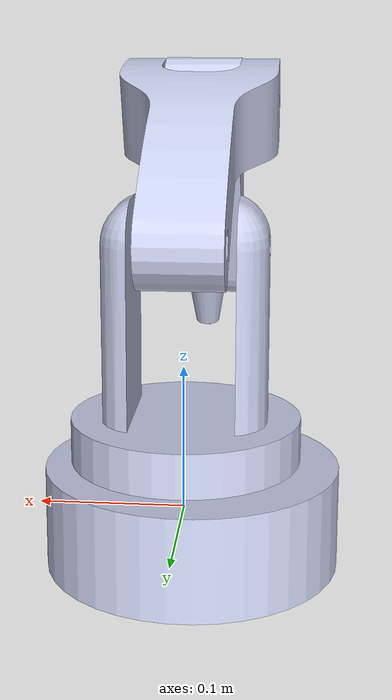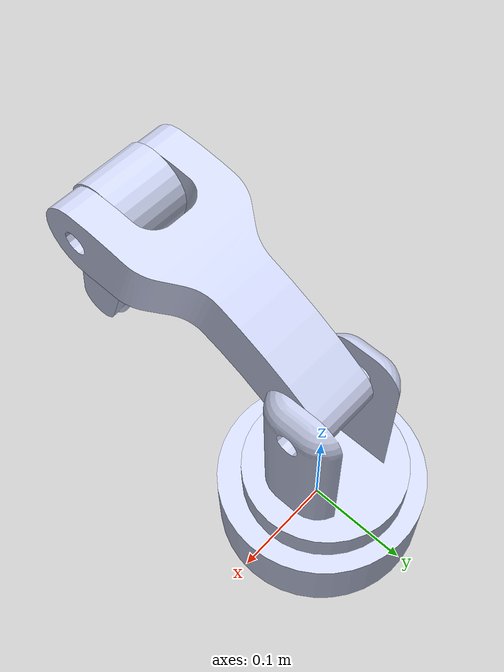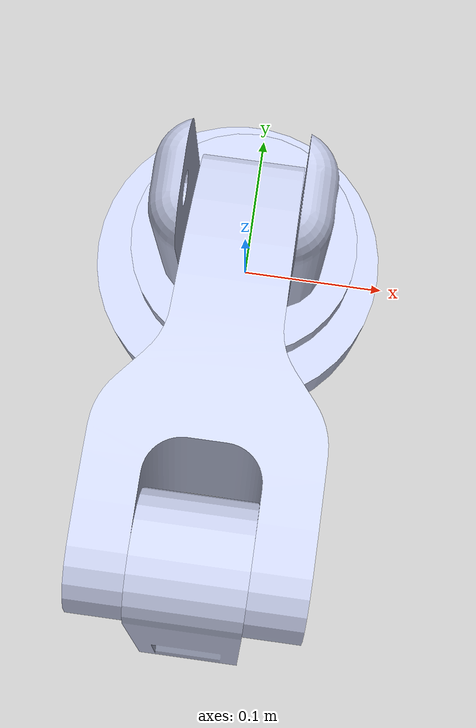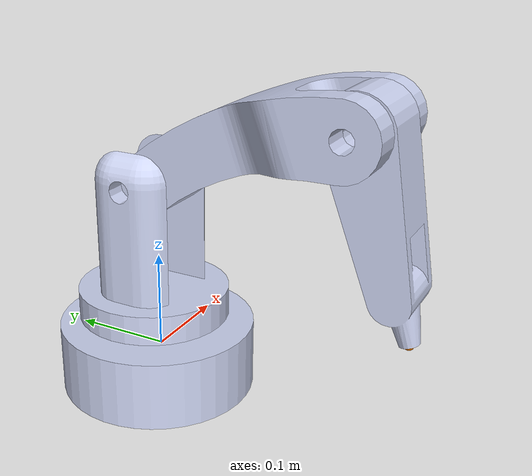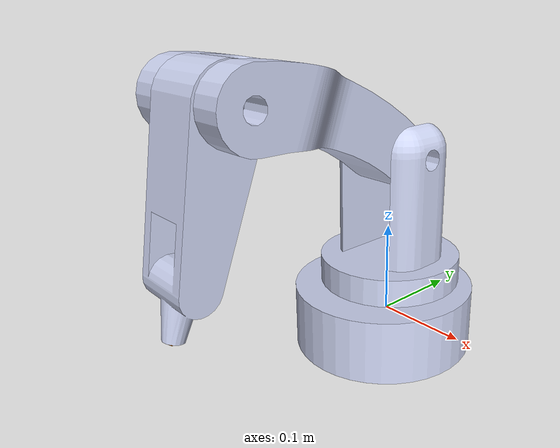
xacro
<?xml version="1.0"?>
<robot xmlns:xacro="http://www.ros.org/wiki/xacro" name="robot_montaj">
    <xacro:arg name="initial_positions_file" default="initial_positions.yaml" />

    <!-- Import robot_montaj urdf file -->
    <xacro:include filename="$(find kinect_arm_control)/description/urdf/robot_montaj.urdf" />

    <!-- Import control_xacro -->
    <xacro:include filename="robot_montaj.ros2_control.xacro" />

    <xacro:robot_montaj_ros2_control name="FakeSystem" initial_positions_file="$(arg initial_positions_file)"/>

</robot>

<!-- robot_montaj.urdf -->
<robot name="robot_montaj">

  <link name="world"/>
  <joint name="fixed_to_world" type="fixed">
    <parent link="world"/>
    <child link="base_link"/>
    <origin xyz="0 0 0" rpy="0 0 0"/>
  </joint>

  <link name="base_link">
    <inertial>
      <origin xyz="-0.0057354 0.00028844 0.0028305" rpy="0 0 0" />
      <mass value="2.0617" />
      <inertia ixx="0.0063182" ixy="1.6404E-37" ixz="-1.8048E-35" iyy="0.0063182" iyz="-1.5804E-35" izz="0.010953" />
    </inertial>
    <visual>
      <origin xyz="0 0 0" rpy="1.5708 0 0" />
      <geometry>
        <mesh filename="package://kinect_arm_control/description/meshes/base_link.STL" />
      </geometry>
      <material name="">
        <color rgba="0.79216 0.81961 0.93333 1" />
      </material>
    </visual>
    <collision>
      <origin xyz="0 0 0" rpy="1.5708 0 0" />
      <geometry>
        <mesh filename="package://kinect_arm_control/description/meshes/base_link.STL" />
      </geometry>
    </collision>
  </link>

  <link name="link_1">
    <inertial>
      <origin xyz="0.001866 -0.005431 0.073379" rpy="0 0 0" />
      <mass value="1.0475" />
      <inertia ixx="0.0039029" ixy="4.5787E-10" ixz="3.2618E-09" iyy="0.0044332" iyz="-3.0406E-10" izz="0.0025452" />
    </inertial>
    <visual>
      <origin xyz="0 0 0" rpy="0 0 -3.1416"  />
      <geometry>
        <mesh filename="package://kinect_arm_control/description/meshes/link_1.STL" />
      </geometry>
      <material name="">
        <color rgba="0.79216 0.81961 0.93333 1" />
      </material>
    </visual>
    <collision>
      <origin xyz="0 0 0" rpy="0 0 -3.1416"  />
      <geometry>
        <mesh filename="package://kinect_arm_control/description/meshes/link_1.STL" />
      </geometry>
    </collision>
  </link>

  <joint name="joint0" type="revolute">
    <origin xyz="0 0 0" rpy="0 0 0"  />
    <parent link="base_link" />
    <child link="link_1" />
    <axis xyz="0 0 1" />
    <limit lower="-3.14" upper="3.14" effort="100.0" velocity="1.0"/>
  </joint>

  <link name="link_2">
    <inertial>
      <origin xyz="0.11978 0.01159 -0.001866" rpy="0 0 0" />
      <mass value="1.1572" />
      <inertia ixx="0.0015363" ixy="2.3965E-05" ixz="4.0545E-09" iyy="0.007344" iyz="-2.4022E-10" izz="0.006733" />
    </inertial>
    <visual>
      <origin xyz="0 0 0" rpy="0 0 0" />
      <geometry>
        <mesh filename="package://kinect_arm_control/description/meshes/link_2.STL" />
      </geometry>
      <material name="">
        <color rgba="0.79216 0.81961 0.93333 1" />
      </material>
    </visual>
    <collision>
      <origin xyz="0 0 0" rpy="0 0 0" />
      <geometry>
        <mesh filename="package://kinect_arm_control/description/meshes/link_2.STL" />
      </geometry>
    </collision>
  </link>

  <joint name="joint1" type="revolute">
    <origin xyz="0 -0.005431 0.18283" rpy="1.5708 -0.36225 -1.5708" />
    <parent link="link_1" />
    <child link="link_2" />
    <axis xyz="0 0 1" />
    <limit lower="0.0" upper="0.80" effort="100.0" velocity="1.0"/>
  </joint>

  <link name="link_3">
    <inertial>
      <origin xyz="0.056936 -1.1651E-07 0.001866" rpy="0 0 0" />
      <mass value="0.56572" />
      <inertia ixx="0.00033639" ixy="6.444E-09" ixz="3.9191E-09" iyy="0.0020474" iyz="4.0377E-11" izz="0.0020274" />
    </inertial>
    <visual>
      <origin xyz="0 0 0" rpy="0 0 0" />
      <geometry>
        <mesh filename="package://kinect_arm_control/description/meshes/link_3.STL" />
      </geometry>
      <material name="">
        <color rgba="0.79216 0.81961 0.93333 1" />
      </material>
    </visual>
    <collision>
      <origin xyz="0 0 0" rpy="0 0 0" />
      <geometry>
        <mesh filename="package://kinect_arm_control/description/meshes/link_3.STL" />
      </geometry>
    </collision>
  </link>

  <joint name="joint2" type="revolute">
    <origin xyz="0.22 0 0" rpy="-3.1416 0 -1.6666" />
    <parent link="link_2" />
    <child link="link_3" />
    <axis xyz="0 0 1" />
    <limit lower="-1.0" upper="0.1" effort="100.0" velocity="1.0"/>
  </joint>

  <link name="tcp_link">
    <inertial>
      <mass value="0.001" />
      <origin xyz="0 0 0" rpy="0 0 0" />
      <inertia ixx="0.000001" ixy="0" ixz="0" iyy="0.000001" iyz="0" izz="0.000001" />
    </inertial>
    <visual>
      <origin xyz="0 0 0" rpy="0 0 0" />
      <geometry>
        <sphere radius="0.005" />
      </geometry>
      <material name="orange">
        <color rgba="1.0 0.5 0.0 1.0" />
      </material>
    </visual>
    <collision>
      <origin xyz="0 0 0" rpy="0 0 0" />
      <geometry>
        <sphere radius="0.005" />
      </geometry>
    </collision>
  </link>

  <joint name="tcp_joint" type="fixed">
    <parent link="link_3" />
    <child link="tcp_link" />
    <origin xyz="0.20 0 0" rpy="0 0 0" />
  </joint>

  <ros2_control name="GazeboSystem" type="system">
    <hardware>
      <plugin>gazebo_ros2_control/GazeboSystem</plugin>
    </hardware>
    <joint name="joint0">
      <command_interface name="position"/>
      <state_interface name="position"/>
      <state_interface name="velocity"/>
    </joint>
    <joint name="joint1">
      <command_interface name="position"/>
      <state_interface name="position"/>
      <state_interface name="velocity"/>
    </joint>
    <joint name="joint2">
      <command_interface name="position"/>
      <state_interface name="position"/>
      <state_interface name="velocity"/>
    </joint>
  </ros2_control>

  <gazebo>
    <plugin filename="libgazebo_ros2_control.so" name="gazebo_ros2_control">
      <parameters>/home/orhan/ros2_ws/src/my_custom_arm_moveit_config/config/ros2_controllers.yaml</parameters>
    </plugin>
  </gazebo>

</robot>
